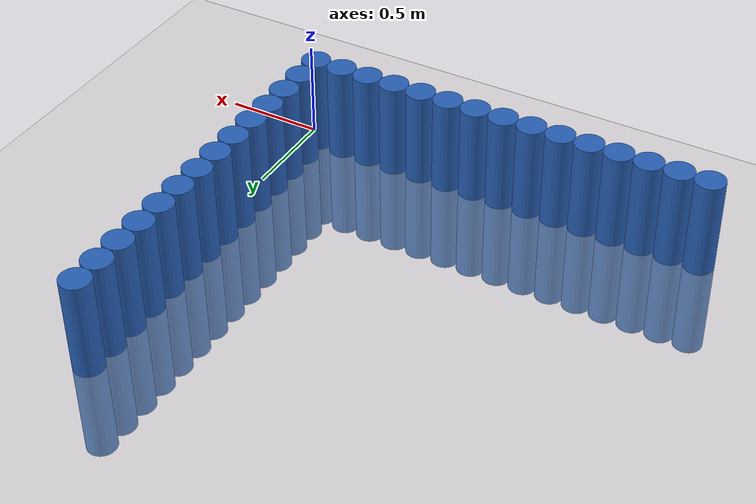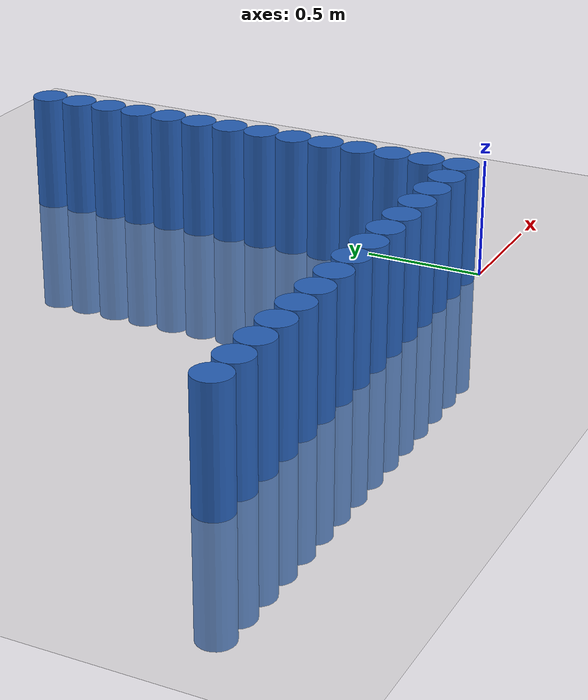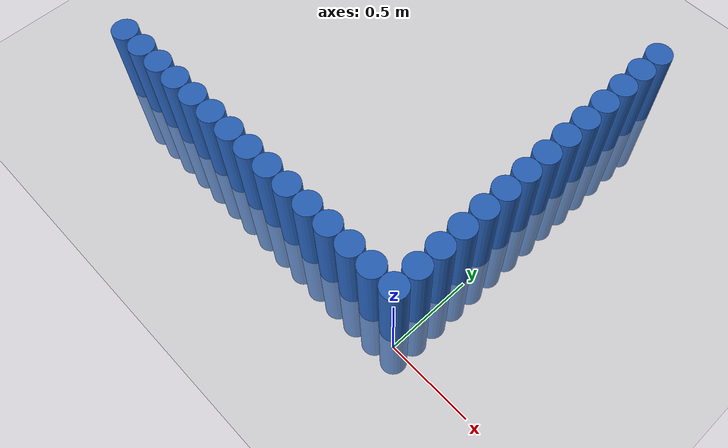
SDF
<sdf version="1.6">
 <world name="default">
  <model name="ground_plane">
   <static>1</static>
   <link name="link">
    <collision name="collision">
     <geometry><plane><normal>0 0 1</normal><size>100 100</size></plane></geometry>
     <surface><friction><ode><mu>100</mu><mu2>50</mu2></ode></friction></surface>
    </collision>
    <visual name="visual">
     <cast_shadows>0</cast_shadows>
     <geometry><plane><normal>0 0 1</normal><size>100 100</size></plane></geometry>
     <material>
      <script><uri>file://media/materials/scripts/gazebo.material</uri><name>Gazebo/Grey</name></script>
     </material>
    </visual>
   </link>
  </model>
  <model name="unit_cylinder_0">
   <static>1</static>
   <pose>-0.075000 0.075000 0.000000 0.000000 0.000000 0.000000</pose>
   <link name="link">
    <inertial>
     <mass>1</mass>
     <inertia><ixx>0.145833</ixx><ixy>0</ixy><ixz>0</ixz><iyy>0.145833</iyy><iyz>0</iyz><izz>0.125</izz></inertia>
    </inertial>
    <collision name="collision">
     <geometry><cylinder><radius>0.075000</radius><length>1</length></cylinder></geometry>
    </collision>
    <visual name="visual">
     <geometry><cylinder><radius>0.075000</radius><length>1</length></cylinder></geometry>
     <material>
      <ambient>0.152000 0.379000 0.720000 1</ambient>
      <diffuse>0.152000 0.379000 0.720000 1</diffuse>
     </material>
     <material>
      <script><name>Gazebo/Grey</name><uri>file://media/materials/scripts/gazebo.material</uri></script>
     </material>
    </visual>
   </link>
  </model>
  <model name="unit_cylinder_1">
   <static>1</static>
   <pose>-0.225000 0.075000 0.000000 0.000000 0.000000 0.000000</pose>
   <link name="link">
    <inertial>
     <mass>1</mass>
     <inertia><ixx>0.145833</ixx><ixy>0</ixy><ixz>0</ixz><iyy>0.145833</iyy><iyz>0</iyz><izz>0.125</izz></inertia>
    </inertial>
    <collision name="collision">
     <geometry><cylinder><radius>0.075000</radius><length>1</length></cylinder></geometry>
    </collision>
    <visual name="visual">
     <geometry><cylinder><radius>0.075000</radius><length>1</length></cylinder></geometry>
     <material>
      <ambient>0.152000 0.379000 0.720000 1</ambient>
      <diffuse>0.152000 0.379000 0.720000 1</diffuse>
     </material>
     <material>
      <script><name>Gazebo/Grey</name><uri>file://media/materials/scripts/gazebo.material</uri></script>
     </material>
    </visual>
   </link>
  </model>
  <model name="unit_cylinder_2">
   <static>1</static>
   <pose>-0.375000 0.075000 0.000000 0.000000 0.000000 0.000000</pose>
   <link name="link">
    <inertial>
     <mass>1</mass>
     <inertia><ixx>0.145833</ixx><ixy>0</ixy><ixz>0</ixz><iyy>0.145833</iyy><iyz>0</iyz><izz>0.125</izz></inertia>
    </inertial>
    <collision name="collision">
     <geometry><cylinder><radius>0.075000</radius><length>1</length></cylinder></geometry>
    </collision>
    <visual name="visual">
     <geometry><cylinder><radius>0.075000</radius><length>1</length></cylinder></geometry>
     <material>
      <ambient>0.152000 0.379000 0.720000 1</ambient>
      <diffuse>0.152000 0.379000 0.720000 1</diffuse>
     </material>
     <material>
      <script><name>Gazebo/Grey</name><uri>file://media/materials/scripts/gazebo.material</uri></script>
     </material>
    </visual>
   </link>
  </model>
  <model name="unit_cylinder_3">
   <static>1</static>
   <pose>-0.525000 0.075000 0.000000 0.000000 0.000000 0.000000</pose>
   <link name="link">
    <inertial>
     <mass>1</mass>
     <inertia><ixx>0.145833</ixx><ixy>0</ixy><ixz>0</ixz><iyy>0.145833</iyy><iyz>0</iyz><izz>0.125</izz></inertia>
    </inertial>
    <collision name="collision">
     <geometry><cylinder><radius>0.075000</radius><length>1</length></cylinder></geometry>
    </collision>
    <visual name="visual">
     <geometry><cylinder><radius>0.075000</radius><length>1</length></cylinder></geometry>
     <material>
      <ambient>0.152000 0.379000 0.720000 1</ambient>
      <diffuse>0.152000 0.379000 0.720000 1</diffuse>
     </material>
     <material>
      <script><name>Gazebo/Grey</name><uri>file://media/materials/scripts/gazebo.material</uri></script>
     </material>
    </visual>
   </link>
  </model>
  <model name="unit_cylinder_4">
   <static>1</static>
   <pose>-0.675000 0.075000 0.000000 0.000000 0.000000 0.000000</pose>
   <link name="link">
    <inertial>
     <mass>1</mass>
     <inertia><ixx>0.145833</ixx><ixy>0</ixy><ixz>0</ixz><iyy>0.145833</iyy><iyz>0</iyz><izz>0.125</izz></inertia>
    </inertial>
    <collision name="collision">
     <geometry><cylinder><radius>0.075000</radius><length>1</length></cylinder></geometry>
    </collision>
    <visual name="visual">
     <geometry><cylinder><radius>0.075000</radius><length>1</length></cylinder></geometry>
     <material>
      <ambient>0.152000 0.379000 0.720000 1</ambient>
      <diffuse>0.152000 0.379000 0.720000 1</diffuse>
     </material>
     <material>
      <script><name>Gazebo/Grey</name><uri>file://media/materials/scripts/gazebo.material</uri></script>
     </material>
    </visual>
   </link>
  </model>
  <model name="unit_cylinder_5">
   <static>1</static>
   <pose>-0.825000 0.075000 0.000000 0.000000 0.000000 0.000000</pose>
   <link name="link">
    <inertial>
     <mass>1</mass>
     <inertia><ixx>0.145833</ixx><ixy>0</ixy><ixz>0</ixz><iyy>0.145833</iyy><iyz>0</iyz><izz>0.125</izz></inertia>
    </inertial>
    <collision name="collision">
     <geometry><cylinder><radius>0.075000</radius><length>1</length></cylinder></geometry>
    </collision>
    <visual name="visual">
     <geometry><cylinder><radius>0.075000</radius><length>1</length></cylinder></geometry>
     <material>
      <ambient>0.152000 0.379000 0.720000 1</ambient>
      <diffuse>0.152000 0.379000 0.720000 1</diffuse>
     </material>
     <material>
      <script><name>Gazebo/Grey</name><uri>file://media/materials/scripts/gazebo.material</uri></script>
     </material>
    </visual>
   </link>
  </model>
  <model name="unit_cylinder_6">
   <static>1</static>
   <pose>-0.975000 0.075000 0.000000 0.000000 0.000000 0.000000</pose>
   <link name="link">
    <inertial>
     <mass>1</mass>
     <inertia><ixx>0.145833</ixx><ixy>0</ixy><ixz>0</ixz><iyy>0.145833</iyy><iyz>0</iyz><izz>0.125</izz></inertia>
    </inertial>
    <collision name="collision">
     <geometry><cylinder><radius>0.075000</radius><length>1</length></cylinder></geometry>
    </collision>
    <visual name="visual">
     <geometry><cylinder><radius>0.075000</radius><length>1</length></cylinder></geometry>
     <material>
      <ambient>0.152000 0.379000 0.720000 1</ambient>
      <diffuse>0.152000 0.379000 0.720000 1</diffuse>
     </material>
     <material>
      <script><name>Gazebo/Grey</name><uri>file://media/materials/scripts/gazebo.material</uri></script>
     </material>
    </visual>
   </link>
  </model>
  <model name="unit_cylinder_7">
   <static>1</static>
   <pose>-1.125000 0.075000 0.000000 0.000000 0.000000 0.000000</pose>
   <link name="link">
    <inertial>
     <mass>1</mass>
     <inertia><ixx>0.145833</ixx><ixy>0</ixy><ixz>0</ixz><iyy>0.145833</iyy><iyz>0</iyz><izz>0.125</izz></inertia>
    </inertial>
    <collision name="collision">
     <geometry><cylinder><radius>0.075000</radius><length>1</length></cylinder></geometry>
    </collision>
    <visual name="visual">
     <geometry><cylinder><radius>0.075000</radius><length>1</length></cylinder></geometry>
     <material>
      <ambient>0.152000 0.379000 0.720000 1</ambient>
      <diffuse>0.152000 0.379000 0.720000 1</diffuse>
     </material>
     <material>
      <script><name>Gazebo/Grey</name><uri>file://media/materials/scripts/gazebo.material</uri></script>
     </material>
    </visual>
   </link>
  </model>
  <model name="unit_cylinder_8">
   <static>1</static>
   <pose>-1.275000 0.075000 0.000000 0.000000 0.000000 0.000000</pose>
   <link name="link">
    <inertial>
     <mass>1</mass>
     <inertia><ixx>0.145833</ixx><ixy>0</ixy><ixz>0</ixz><iyy>0.145833</iyy><iyz>0</iyz><izz>0.125</izz></inertia>
    </inertial>
    <collision name="collision">
     <geometry><cylinder><radius>0.075000</radius><length>1</length></cylinder></geometry>
    </collision>
    <visual name="visual">
     <geometry><cylinder><radius>0.075000</radius><length>1</length></cylinder></geometry>
     <material>
      <ambient>0.152000 0.379000 0.720000 1</ambient>
      <diffuse>0.152000 0.379000 0.720000 1</diffuse>
     </material>
     <material>
      <script><name>Gazebo/Grey</name><uri>file://media/materials/scripts/gazebo.material</uri></script>
     </material>
    </visual>
   </link>
  </model>
  <model name="unit_cylinder_9">
   <static>1</static>
   <pose>-1.425000 0.075000 0.000000 0.000000 0.000000 0.000000</pose>
   <link name="link">
    <inertial>
     <mass>1</mass>
     <inertia><ixx>0.145833</ixx><ixy>0</ixy><ixz>0</ixz><iyy>0.145833</iyy><iyz>0</iyz><izz>0.125</izz></inertia>
    </inertial>
    <collision name="collision">
     <geometry><cylinder><radius>0.075000</radius><length>1</length></cylinder></geometry>
    </collision>
    <visual name="visual">
     <geometry><cylinder><radius>0.075000</radius><length>1</length></cylinder></geometry>
     <material>
      <ambient>0.152000 0.379000 0.720000 1</ambient>
      <diffuse>0.152000 0.379000 0.720000 1</diffuse>
     </material>
     <material>
      <script><name>Gazebo/Grey</name><uri>file://media/materials/scripts/gazebo.material</uri></script>
     </material>
    </visual>
   </link>
  </model>
  <model name="unit_cylinder_10">
   <static>1</static>
   <pose>-1.575000 0.075000 0.000000 0.000000 0.000000 0.000000</pose>
   <link name="link">
    <inertial>
     <mass>1</mass>
     <inertia><ixx>0.145833</ixx><ixy>0</ixy><ixz>0</ixz><iyy>0.145833</iyy><iyz>0</iyz><izz>0.125</izz></inertia>
    </inertial>
    <collision name="collision">
     <geometry><cylinder><radius>0.075000</radius><length>1</length></cylinder></geometry>
    </collision>
    <visual name="visual">
     <geometry><cylinder><radius>0.075000</radius><length>1</length></cylinder></geometry>
     <material>
      <ambient>0.152000 0.379000 0.720000 1</ambient>
      <diffuse>0.152000 0.379000 0.720000 1</diffuse>
     </material>
     <material>
      <script><name>Gazebo/Grey</name><uri>file://media/materials/scripts/gazebo.material</uri></script>
     </material>
    </visual>
   </link>
  </model>
  <model name="unit_cylinder_11">
   <static>1</static>
   <pose>-1.725000 0.075000 0.000000 0.000000 0.000000 0.000000</pose>
   <link name="link">
    <inertial>
     <mass>1</mass>
     <inertia><ixx>0.145833</ixx><ixy>0</ixy><ixz>0</ixz><iyy>0.145833</iyy><iyz>0</iyz><izz>0.125</izz></inertia>
    </inertial>
    <collision name="collision">
     <geometry><cylinder><radius>0.075000</radius><length>1</length></cylinder></geometry>
    </collision>
    <visual name="visual">
     <geometry><cylinder><radius>0.075000</radius><length>1</length></cylinder></geometry>
     <material>
      <ambient>0.152000 0.379000 0.720000 1</ambient>
      <diffuse>0.152000 0.379000 0.720000 1</diffuse>
     </material>
     <material>
      <script><name>Gazebo/Grey</name><uri>file://media/materials/scripts/gazebo.material</uri></script>
     </material>
    </visual>
   </link>
  </model>
  <model name="unit_cylinder_12">
   <static>1</static>
   <pose>-1.875000 0.075000 0.000000 0.000000 0.000000 0.000000</pose>
   <link name="link">
    <inertial>
     <mass>1</mass>
     <inertia><ixx>0.145833</ixx><ixy>0</ixy><ixz>0</ixz><iyy>0.145833</iyy><iyz>0</iyz><izz>0.125</izz></inertia>
    </inertial>
    <collision name="collision">
     <geometry><cylinder><radius>0.075000</radius><length>1</length></cylinder></geometry>
    </collision>
    <visual name="visual">
     <geometry><cylinder><radius>0.075000</radius><length>1</length></cylinder></geometry>
     <material>
      <ambient>0.152000 0.379000 0.720000 1</ambient>
      <diffuse>0.152000 0.379000 0.720000 1</diffuse>
     </material>
     <material>
      <script><name>Gazebo/Grey</name><uri>file://media/materials/scripts/gazebo.material</uri></script>
     </material>
    </visual>
   </link>
  </model>
  <model name="unit_cylinder_13">
   <static>1</static>
   <pose>-2.025000 0.075000 0.000000 0.000000 0.000000 0.000000</pose>
   <link name="link">
    <inertial>
     <mass>1</mass>
     <inertia><ixx>0.145833</ixx><ixy>0</ixy><ixz>0</ixz><iyy>0.145833</iyy><iyz>0</iyz><izz>0.125</izz></inertia>
    </inertial>
    <collision name="collision">
     <geometry><cylinder><radius>0.075000</radius><length>1</length></cylinder></geometry>
    </collision>
    <visual name="visual">
     <geometry><cylinder><radius>0.075000</radius><length>1</length></cylinder></geometry>
     <material>
      <ambient>0.152000 0.379000 0.720000 1</ambient>
      <diffuse>0.152000 0.379000 0.720000 1</diffuse>
     </material>
     <material>
      <script><name>Gazebo/Grey</name><uri>file://media/materials/scripts/gazebo.material</uri></script>
     </material>
    </visual>
   </link>
  </model>
  <model name="unit_cylinder_14">
   <static>1</static>
   <pose>-2.175000 0.075000 0.000000 0.000000 0.000000 0.000000</pose>
   <link name="link">
    <inertial>
     <mass>1</mass>
     <inertia><ixx>0.145833</ixx><ixy>0</ixy><ixz>0</ixz><iyy>0.145833</iyy><iyz>0</iyz><izz>0.125</izz></inertia>
    </inertial>
    <collision name="collision">
     <geometry><cylinder><radius>0.075000</radius><length>1</length></cylinder></geometry>
    </collision>
    <visual name="visual">
     <geometry><cylinder><radius>0.075000</radius><length>1</length></cylinder></geometry>
     <material>
      <ambient>0.152000 0.379000 0.720000 1</ambient>
      <diffuse>0.152000 0.379000 0.720000 1</diffuse>
     </material>
     <material>
      <script><name>Gazebo/Grey</name><uri>file://media/materials/scripts/gazebo.material</uri></script>
     </material>
    </visual>
   </link>
  </model>
  <model name="unit_cylinder_30">
   <static>1</static>
   <pose>-0.075000 0.225000 0.000000 0.000000 0.000000 0.000000</pose>
   <link name="link">
    <inertial>
     <mass>1</mass>
     <inertia><ixx>0.145833</ixx><ixy>0</ixy><ixz>0</ixz><iyy>0.145833</iyy><iyz>0</iyz><izz>0.125</izz></inertia>
    </inertial>
    <collision name="collision">
     <geometry><cylinder><radius>0.075000</radius><length>1</length></cylinder></geometry>
    </collision>
    <visual name="visual">
     <geometry><cylinder><radius>0.075000</radius><length>1</length></cylinder></geometry>
     <material>
      <ambient>0.152000 0.379000 0.720000 1</ambient>
      <diffuse>0.152000 0.379000 0.720000 1</diffuse>
     </material>
     <material>
      <script><name>Gazebo/Grey</name><uri>file://media/materials/scripts/gazebo.material</uri></script>
     </material>
    </visual>
   </link>
  </model>
  <model name="unit_cylinder_32">
   <static>1</static>
   <pose>-0.075000 0.375000 0.000000 0.000000 0.000000 0.000000</pose>
   <link name="link">
    <inertial>
     <mass>1</mass>
     <inertia><ixx>0.145833</ixx><ixy>0</ixy><ixz>0</ixz><iyy>0.145833</iyy><iyz>0</iyz><izz>0.125</izz></inertia>
    </inertial>
    <collision name="collision">
     <geometry><cylinder><radius>0.075000</radius><length>1</length></cylinder></geometry>
    </collision>
    <visual name="visual">
     <geometry><cylinder><radius>0.075000</radius><length>1</length></cylinder></geometry>
     <material>
      <ambient>0.152000 0.379000 0.720000 1</ambient>
      <diffuse>0.152000 0.379000 0.720000 1</diffuse>
     </material>
     <material>
      <script><name>Gazebo/Grey</name><uri>file://media/materials/scripts/gazebo.material</uri></script>
     </material>
    </visual>
   </link>
  </model>
  <model name="unit_cylinder_34">
   <static>1</static>
   <pose>-0.075000 0.525000 0.000000 0.000000 0.000000 0.000000</pose>
   <link name="link">
    <inertial>
     <mass>1</mass>
     <inertia><ixx>0.145833</ixx><ixy>0</ixy><ixz>0</ixz><iyy>0.145833</iyy><iyz>0</iyz><izz>0.125</izz></inertia>
    </inertial>
    <collision name="collision">
     <geometry><cylinder><radius>0.075000</radius><length>1</length></cylinder></geometry>
    </collision>
    <visual name="visual">
     <geometry><cylinder><radius>0.075000</radius><length>1</length></cylinder></geometry>
     <material>
      <ambient>0.152000 0.379000 0.720000 1</ambient>
      <diffuse>0.152000 0.379000 0.720000 1</diffuse>
     </material>
     <material>
      <script><name>Gazebo/Grey</name><uri>file://media/materials/scripts/gazebo.material</uri></script>
     </material>
    </visual>
   </link>
  </model>
  <model name="unit_cylinder_36">
   <static>1</static>
   <pose>-0.075000 0.675000 0.000000 0.000000 0.000000 0.000000</pose>
   <link name="link">
    <inertial>
     <mass>1</mass>
     <inertia><ixx>0.145833</ixx><ixy>0</ixy><ixz>0</ixz><iyy>0.145833</iyy><iyz>0</iyz><izz>0.125</izz></inertia>
    </inertial>
    <collision name="collision">
     <geometry><cylinder><radius>0.075000</radius><length>1</length></cylinder></geometry>
    </collision>
    <visual name="visual">
     <geometry><cylinder><radius>0.075000</radius><length>1</length></cylinder></geometry>
     <material>
      <ambient>0.152000 0.379000 0.720000 1</ambient>
      <diffuse>0.152000 0.379000 0.720000 1</diffuse>
     </material>
     <material>
      <script><name>Gazebo/Grey</name><uri>file://media/materials/scripts/gazebo.material</uri></script>
     </material>
    </visual>
   </link>
  </model>
  <model name="unit_cylinder_38">
   <static>1</static>
   <pose>-0.075000 0.825000 0.000000 0.000000 0.000000 0.000000</pose>
   <link name="link">
    <inertial>
     <mass>1</mass>
     <inertia><ixx>0.145833</ixx><ixy>0</ixy><ixz>0</ixz><iyy>0.145833</iyy><iyz>0</iyz><izz>0.125</izz></inertia>
    </inertial>
    <collision name="collision">
     <geometry><cylinder><radius>0.075000</radius><length>1</length></cylinder></geometry>
    </collision>
    <visual name="visual">
     <geometry><cylinder><radius>0.075000</radius><length>1</length></cylinder></geometry>
     <material>
      <ambient>0.152000 0.379000 0.720000 1</ambient>
      <diffuse>0.152000 0.379000 0.720000 1</diffuse>
     </material>
     <material>
      <script><name>Gazebo/Grey</name><uri>file://media/materials/scripts/gazebo.material</uri></script>
     </material>
    </visual>
   </link>
  </model>
  <model name="unit_cylinder_40">
   <static>1</static>
   <pose>-0.075000 0.975000 0.000000 0.000000 0.000000 0.000000</pose>
   <link name="link">
    <inertial>
     <mass>1</mass>
     <inertia><ixx>0.145833</ixx><ixy>0</ixy><ixz>0</ixz><iyy>0.145833</iyy><iyz>0</iyz><izz>0.125</izz></inertia>
    </inertial>
    <collision name="collision">
     <geometry><cylinder><radius>0.075000</radius><length>1</length></cylinder></geometry>
    </collision>
    <visual name="visual">
     <geometry><cylinder><radius>0.075000</radius><length>1</length></cylinder></geometry>
     <material>
      <ambient>0.152000 0.379000 0.720000 1</ambient>
      <diffuse>0.152000 0.379000 0.720000 1</diffuse>
     </material>
     <material>
      <script><name>Gazebo/Grey</name><uri>file://media/materials/scripts/gazebo.material</uri></script>
     </material>
    </visual>
   </link>
  </model>
  <model name="unit_cylinder_42">
   <static>1</static>
   <pose>-0.075000 1.125000 0.000000 0.000000 0.000000 0.000000</pose>
   <link name="link">
    <inertial>
     <mass>1</mass>
     <inertia><ixx>0.145833</ixx><ixy>0</ixy><ixz>0</ixz><iyy>0.145833</iyy><iyz>0</iyz><izz>0.125</izz></inertia>
    </inertial>
    <collision name="collision">
     <geometry><cylinder><radius>0.075000</radius><length>1</length></cylinder></geometry>
    </collision>
    <visual name="visual">
     <geometry><cylinder><radius>0.075000</radius><length>1</length></cylinder></geometry>
     <material>
      <ambient>0.152000 0.379000 0.720000 1</ambient>
      <diffuse>0.152000 0.379000 0.720000 1</diffuse>
     </material>
     <material>
      <script><name>Gazebo/Grey</name><uri>file://media/materials/scripts/gazebo.material</uri></script>
     </material>
    </visual>
   </link>
  </model>
  <model name="unit_cylinder_44">
   <static>1</static>
   <pose>-0.075000 1.275000 0.000000 0.000000 0.000000 0.000000</pose>
   <link name="link">
    <inertial>
     <mass>1</mass>
     <inertia><ixx>0.145833</ixx><ixy>0</ixy><ixz>0</ixz><iyy>0.145833</iyy><iyz>0</iyz><izz>0.125</izz></inertia>
    </inertial>
    <collision name="collision">
     <geometry><cylinder><radius>0.075000</radius><length>1</length></cylinder></geometry>
    </collision>
    <visual name="visual">
     <geometry><cylinder><radius>0.075000</radius><length>1</length></cylinder></geometry>
     <material>
      <ambient>0.152000 0.379000 0.720000 1</ambient>
      <diffuse>0.152000 0.379000 0.720000 1</diffuse>
     </material>
     <material>
      <script><name>Gazebo/Grey</name><uri>file://media/materials/scripts/gazebo.material</uri></script>
     </material>
    </visual>
   </link>
  </model>
  <model name="unit_cylinder_46">
   <static>1</static>
   <pose>-0.075000 1.425000 0.000000 0.000000 0.000000 0.000000</pose>
   <link name="link">
    <inertial>
     <mass>1</mass>
     <inertia><ixx>0.145833</ixx><ixy>0</ixy><ixz>0</ixz><iyy>0.145833</iyy><iyz>0</iyz><izz>0.125</izz></inertia>
    </inertial>
    <collision name="collision">
     <geometry><cylinder><radius>0.075000</radius><length>1</length></cylinder></geometry>
    </collision>
    <visual name="visual">
     <geometry><cylinder><radius>0.075000</radius><length>1</length></cylinder></geometry>
     <material>
      <ambient>0.152000 0.379000 0.720000 1</ambient>
      <diffuse>0.152000 0.379000 0.720000 1</diffuse>
     </material>
     <material>
      <script><name>Gazebo/Grey</name><uri>file://media/materials/scripts/gazebo.material</uri></script>
     </material>
    </visual>
   </link>
  </model>
  <model name="unit_cylinder_48">
   <static>1</static>
   <pose>-0.075000 1.575000 0.000000 0.000000 0.000000 0.000000</pose>
   <link name="link">
    <inertial>
     <mass>1</mass>
     <inertia><ixx>0.145833</ixx><ixy>0</ixy><ixz>0</ixz><iyy>0.145833</iyy><iyz>0</iyz><izz>0.125</izz></inertia>
    </inertial>
    <collision name="collision">
     <geometry><cylinder><radius>0.075000</radius><length>1</length></cylinder></geometry>
    </collision>
    <visual name="visual">
     <geometry><cylinder><radius>0.075000</radius><length>1</length></cylinder></geometry>
     <material>
      <ambient>0.152000 0.379000 0.720000 1</ambient>
      <diffuse>0.152000 0.379000 0.720000 1</diffuse>
     </material>
     <material>
      <script><name>Gazebo/Grey</name><uri>file://media/materials/scripts/gazebo.material</uri></script>
     </material>
    </visual>
   </link>
  </model>
  <model name="unit_cylinder_50">
   <static>1</static>
   <pose>-0.075000 1.725000 0.000000 0.000000 0.000000 0.000000</pose>
   <link name="link">
    <inertial>
     <mass>1</mass>
     <inertia><ixx>0.145833</ixx><ixy>0</ixy><ixz>0</ixz><iyy>0.145833</iyy><iyz>0</iyz><izz>0.125</izz></inertia>
    </inertial>
    <collision name="collision">
     <geometry><cylinder><radius>0.075000</radius><length>1</length></cylinder></geometry>
    </collision>
    <visual name="visual">
     <geometry><cylinder><radius>0.075000</radius><length>1</length></cylinder></geometry>
     <material>
      <ambient>0.152000 0.379000 0.720000 1</ambient>
      <diffuse>0.152000 0.379000 0.720000 1</diffuse>
     </material>
     <material>
      <script><name>Gazebo/Grey</name><uri>file://media/materials/scripts/gazebo.material</uri></script>
     </material>
    </visual>
   </link>
  </model>
  <model name="unit_cylinder_52">
   <static>1</static>
   <pose>-0.075000 1.875000 0.000000 0.000000 0.000000 0.000000</pose>
   <link name="link">
    <inertial>
     <mass>1</mass>
     <inertia><ixx>0.145833</ixx><ixy>0</ixy><ixz>0</ixz><iyy>0.145833</iyy><iyz>0</iyz><izz>0.125</izz></inertia>
    </inertial>
    <collision name="collision">
     <geometry><cylinder><radius>0.075000</radius><length>1</length></cylinder></geometry>
    </collision>
    <visual name="visual">
     <geometry><cylinder><radius>0.075000</radius><length>1</length></cylinder></geometry>
     <material>
      <ambient>0.152000 0.379000 0.720000 1</ambient>
      <diffuse>0.152000 0.379000 0.720000 1</diffuse>
     </material>
     <material>
      <script><name>Gazebo/Grey</name><uri>file://media/materials/scripts/gazebo.material</uri></script>
     </material>
    </visual>
   </link>
  </model>
  <model name="unit_cylinder_54">
   <static>1</static>
   <pose>-0.075000 2.025000 0.000000 0.000000 0.000000 0.000000</pose>
   <link name="link">
    <inertial>
     <mass>1</mass>
     <inertia><ixx>0.145833</ixx><ixy>0</ixy><ixz>0</ixz><iyy>0.145833</iyy><iyz>0</iyz><izz>0.125</izz></inertia>
    </inertial>
    <collision name="collision">
     <geometry><cylinder><radius>0.075000</radius><length>1</length></cylinder></geometry>
    </collision>
    <visual name="visual">
     <geometry><cylinder><radius>0.075000</radius><length>1</length></cylinder></geometry>
     <material>
      <ambient>0.152000 0.379000 0.720000 1</ambient>
      <diffuse>0.152000 0.379000 0.720000 1</diffuse>
     </material>
     <material>
      <script><name>Gazebo/Grey</name><uri>file://media/materials/scripts/gazebo.material</uri></script>
     </material>
    </visual>
   </link>
  </model>
 </world>
</sdf>
